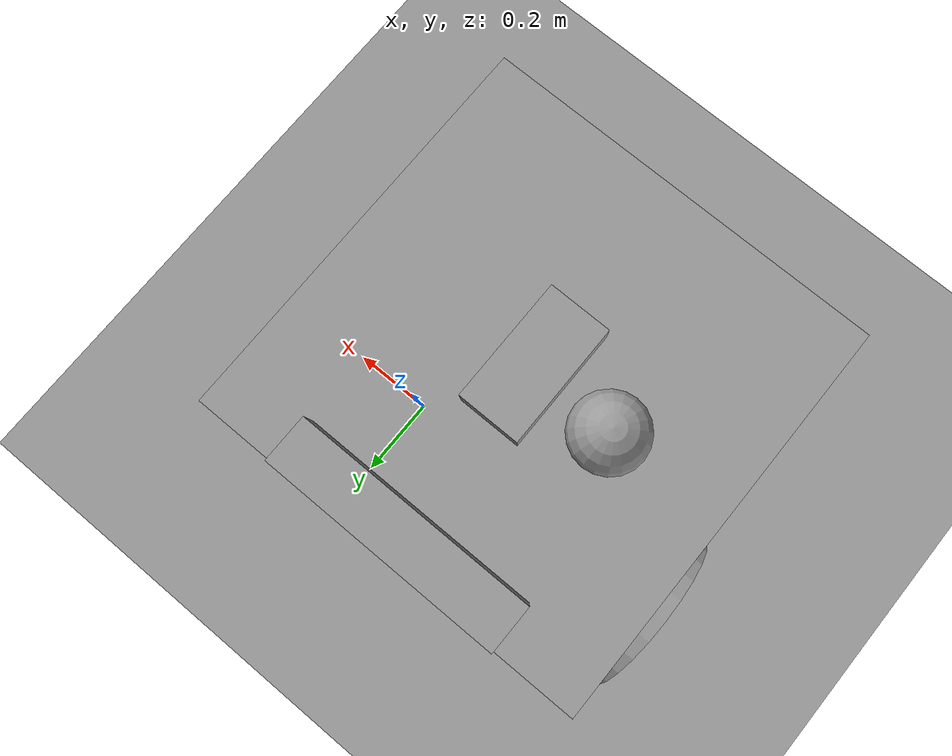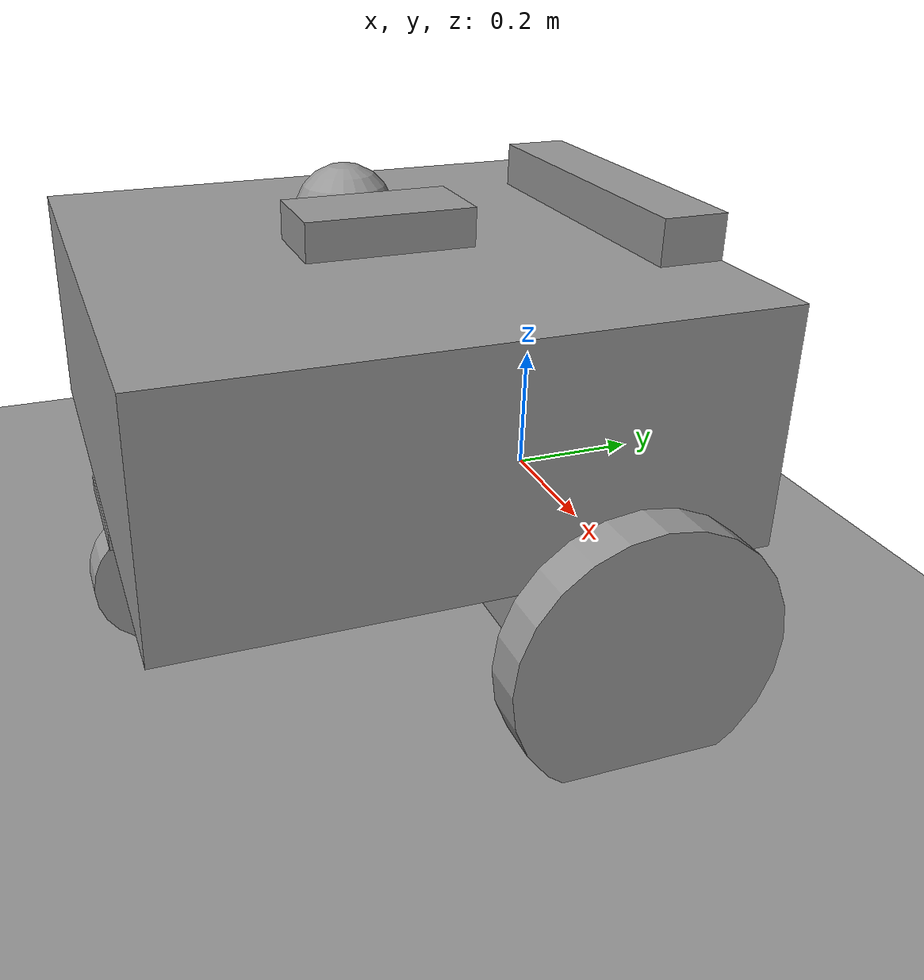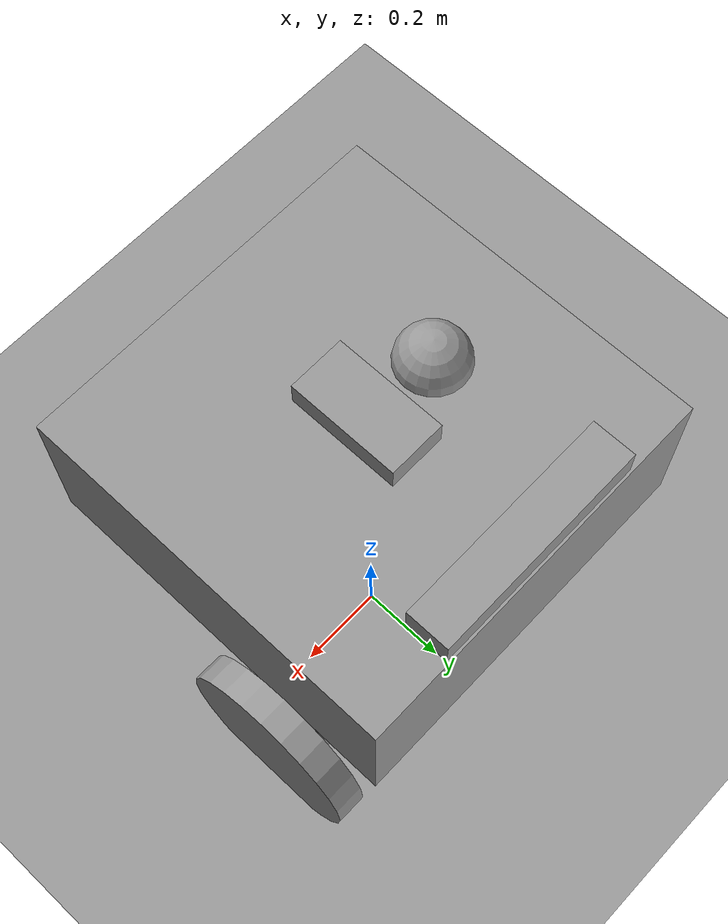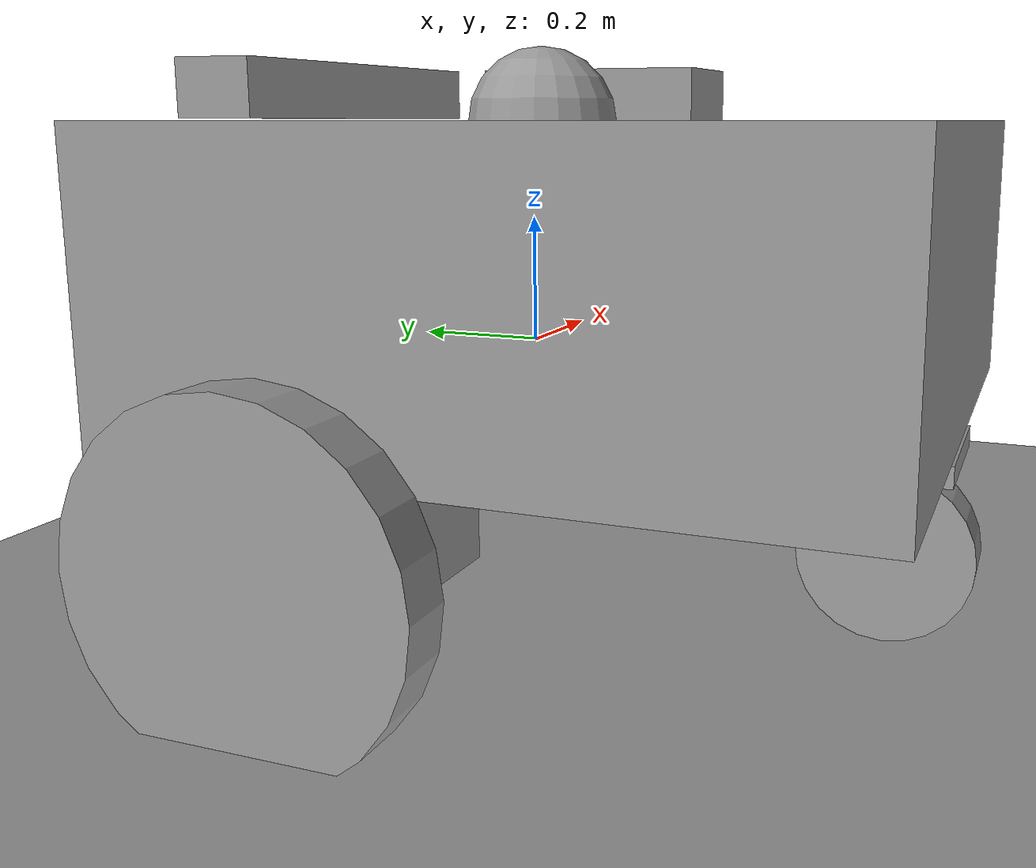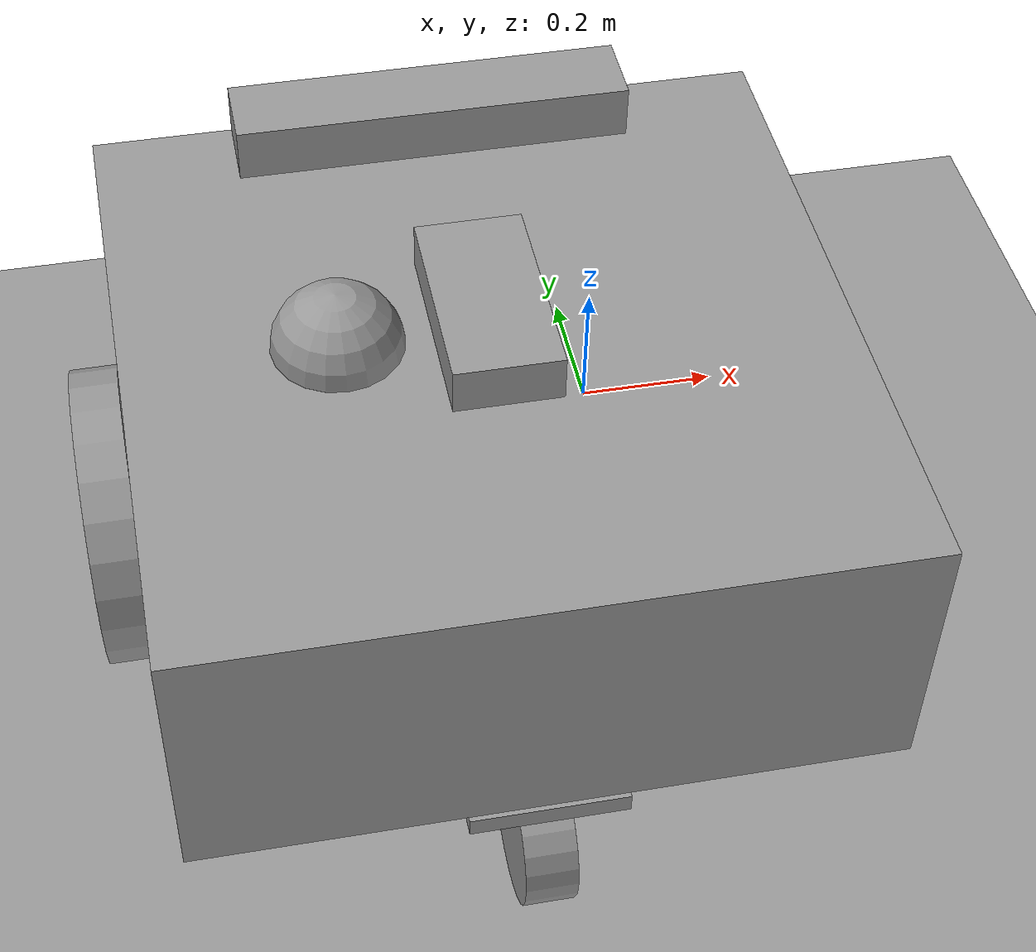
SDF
<?xml version='1.0'?>
<sdf version='1.6'>
  <model name='nano_ros'>
    <link name='link_10'>
      <inertial>
        <mass>0.0017644</mass>
        <inertia>
          <ixx>1.05002e-05</ixx>
          <ixy>0</ixy>
          <ixz>0</ixz>
          <iyy>7.50689e-06</iyy>
          <iyz>0</iyz>
          <izz>1.77484e-05</izz>
        </inertia>
        <pose frame=''>0 0 0 0 -0 0</pose>
      </inertial>
      <pose frame=''>-0.201195 -0.570392 -0.079013 0 -0 0</pose>
      <visual name='visual'>
        <pose frame=''>0 0 0 0 -0 0</pose>
        <geometry>
          <box>
            <size>0.224 0.265582 0.029659</size>
          </box>
        </geometry>
        <material>
          <lighting>1</lighting>
          <script>
            <uri>file://media/materials/scripts/gazebo.material</uri>
            <name>Gazebo/Grey</name>
          </script>
          <emissive>0 0 0 1</emissive>
        </material>
        <transparency>0</transparency>
        <cast_shadows>1</cast_shadows>
      </visual>
      <collision name='collision'>
        <laser_retro>0</laser_retro>
        <max_contacts>10</max_contacts>
        <pose frame=''>0 0 0 0 -0 0</pose>
        <geometry>
          <box>
            <size>0.224 0.265582 0.029659</size>
          </box>
        </geometry>
        <surface>
          <friction>
            <ode>
              <mu>1</mu>
              <mu2>1</mu2>
              <fdir1>0 0 0</fdir1>
              <slip1>0</slip1>
              <slip2>0</slip2>
            </ode>
            <torsional>
              <coefficient>1</coefficient>
              <patch_radius>0</patch_radius>
              <surface_radius>0</surface_radius>
              <use_patch_radius>1</use_patch_radius>
              <ode>
                <slip>0</slip>
              </ode>
            </torsional>
          </friction>
          <bounce>
            <restitution_coefficient>0</restitution_coefficient>
            <threshold>1e+06</threshold>
          </bounce>
          <contact>
            <collide_without_contact>0</collide_without_contact>
            <collide_without_contact_bitmask>1</collide_without_contact_bitmask>
            <collide_bitmask>1</collide_bitmask>
            <ode>
              <soft_cfm>0</soft_cfm>
              <soft_erp>0.2</soft_erp>
              <kp>1e+13</kp>
              <kd>1</kd>
              <max_vel>0.01</max_vel>
              <min_depth>0</min_depth>
            </ode>
            <bullet>
              <split_impulse>1</split_impulse>
              <split_impulse_penetration_threshold>-0.01</split_impulse_penetration_threshold>
              <soft_cfm>0</soft_cfm>
              <soft_erp>0.2</soft_erp>
              <kp>1e+13</kp>
              <kd>1</kd>
            </bullet>
          </contact>
        </surface>
      </collision>
    </link>
    <link name='link_3'>
      <inertial>
        <mass>0.410103</mass>
        <inertia>
          <ixx>0.039923</ixx>
          <ixy>0</ixy>
          <ixz>0</ixz>
          <iyy>0.039923</iyy>
          <iyz>0</iyz>
          <izz>0.0683504</izz>
        </inertia>
        <pose frame=''>0 0 0 0 -0 0</pose>
      </inertial>
      <pose frame=''>-0.196415 -0.201837 0.149643 0 -0 0</pose>
      <gravity>1</gravity>
      <self_collide>0</self_collide>
      <kinematic>0</kinematic>
      <enable_wind>0</enable_wind>
      <visual name='visual'>
        <pose frame=''>0 0 0 0 -0 0</pose>
        <geometry>
          <box>
            <size>1 1 0.410103</size>
          </box>
        </geometry>
        <material>
          <lighting>1</lighting>
          <script>
            <uri>file://media/materials/scripts/gazebo.material</uri>
            <name>Gazebo/Grey</name>
          </script>
          <shader type='vertex'>
            <normal_map>__default__</normal_map>
          </shader>
          <emissive>0 0 0 1</emissive>
          <ambient>0.3 0.3 0.3 1</ambient>
          <diffuse>0.7 0.7 0.7 1</diffuse>
          <specular>0.01 0.01 0.01 1</specular>
        </material>
        <transparency>0</transparency>
        <cast_shadows>1</cast_shadows>
      </visual>
      <collision name='collision'>
        <laser_retro>0</laser_retro>
        <max_contacts>10</max_contacts>
        <pose frame=''>0 0 0 0 -0 0</pose>
        <geometry>
          <box>
            <size>1 1 0.410103</size>
          </box>
        </geometry>
        <surface>
          <friction>
            <ode>
              <mu>1</mu>
              <mu2>1</mu2>
              <fdir1>0 0 0</fdir1>
              <slip1>0</slip1>
              <slip2>0</slip2>
            </ode>
            <torsional>
              <coefficient>1</coefficient>
              <patch_radius>0</patch_radius>
              <surface_radius>0</surface_radius>
              <use_patch_radius>1</use_patch_radius>
              <ode>
                <slip>0</slip>
              </ode>
            </torsional>
          </friction>
          <bounce>
            <restitution_coefficient>0</restitution_coefficient>
            <threshold>1e+06</threshold>
          </bounce>
          <contact>
            <collide_without_contact>0</collide_without_contact>
            <collide_without_contact_bitmask>1</collide_without_contact_bitmask>
            <collide_bitmask>1</collide_bitmask>
            <ode>
              <soft_cfm>0</soft_cfm>
              <soft_erp>0.2</soft_erp>
              <kp>1e+13</kp>
              <kd>1</kd>
              <max_vel>0.01</max_vel>
              <min_depth>0</min_depth>
            </ode>
            <bullet>
              <split_impulse>1</split_impulse>
              <split_impulse_penetration_threshold>-0.01</split_impulse_penetration_threshold>
              <soft_cfm>0</soft_cfm>
              <soft_erp>0.2</soft_erp>
              <kp>1e+13</kp>
              <kd>1</kd>
            </bullet>
          </contact>
        </surface>
      </collision>
    </link>
    <link name='link_5'>
      <inertial>
        <mass>0.00514706</mass>
        <inertia>
          <ixx>8.14895e-06</ixx>
          <ixy>0</ixy>
          <ixz>0</ixz>
          <iyy>0.000146199</iyy>
          <iyz>0</iyz>
          <izz>0.000149055</izz>
        </inertia>
        <pose frame=''>0 0 0 0 -0 0</pose>
      </inertial>
      <pose frame=''>-0.199829 0.235683 0.396842 0 -0 0</pose>
      <visual name='visual'>
        <pose frame=''>0 0 0 0 -0 0</pose>
        <geometry>
          <box>
            <size>0.578517 0.113262 0.078552</size>
          </box>
        </geometry>
        <material>
          <lighting>1</lighting>
          <script>
            <uri>file://media/materials/scripts/gazebo.material</uri>
            <name>Gazebo/Grey</name>
          </script>
          <emissive>0 0 0 1</emissive>
        </material>
        <transparency>0</transparency>
        <cast_shadows>1</cast_shadows>
      </visual>
      <collision name='collision'>
        <laser_retro>0</laser_retro>
        <max_contacts>10</max_contacts>
        <pose frame=''>0 0 0 0 -0 0</pose>
        <geometry>
          <box>
            <size>0.578517 0.113262 0.078552</size>
          </box>
        </geometry>
        <surface>
          <friction>
            <ode>
              <mu>1</mu>
              <mu2>1</mu2>
              <fdir1>0 0 0</fdir1>
              <slip1>0</slip1>
              <slip2>0</slip2>
            </ode>
            <torsional>
              <coefficient>1</coefficient>
              <patch_radius>0</patch_radius>
              <surface_radius>0</surface_radius>
              <use_patch_radius>1</use_patch_radius>
              <ode>
                <slip>0</slip>
              </ode>
            </torsional>
          </friction>
          <bounce>
            <restitution_coefficient>0</restitution_coefficient>
            <threshold>1e+06</threshold>
          </bounce>
          <contact>
            <collide_without_contact>0</collide_without_contact>
            <collide_without_contact_bitmask>1</collide_without_contact_bitmask>
            <collide_bitmask>1</collide_bitmask>
            <ode>
              <soft_cfm>0</soft_cfm>
              <soft_erp>0.2</soft_erp>
              <kp>1e+13</kp>
              <kd>1</kd>
              <max_vel>0.01</max_vel>
              <min_depth>0</min_depth>
            </ode>
            <bullet>
              <split_impulse>1</split_impulse>
              <split_impulse_penetration_threshold>-0.01</split_impulse_penetration_threshold>
              <soft_cfm>0</soft_cfm>
              <soft_erp>0.2</soft_erp>
              <kp>1e+13</kp>
              <kd>1</kd>
            </bullet>
          </contact>
        </surface>
      </collision>
    </link>
    <link name='link_6'>
      <inertial>
        <mass>0.00320996</mass>
        <inertia>
          <ixx>2.48031e-05</ixx>
          <ixy>0</ixy>
          <ixz>0</ixz>
          <iyy>7.50884e-06</iyy>
          <iyz>0</iyz>
          <izz>2.95679e-05</izz>
        </inertia>
        <pose frame=''>0 0 0 0 -0 0</pose>
      </inertial>
      <pose frame=''>-0.194265 -0.197127 0.386277 0 -0 0</pose>
      <visual name='visual'>
        <pose frame=''>0 0 0 0 -0 0</pose>
        <geometry>
          <box>
            <size>0.151465 0.295963 0.071617</size>
          </box>
        </geometry>
        <material>
          <lighting>1</lighting>
          <script>
            <uri>file://media/materials/scripts/gazebo.material</uri>
            <name>Gazebo/Grey</name>
          </script>
          <emissive>0 0 0 1</emissive>
        </material>
        <transparency>0</transparency>
        <cast_shadows>1</cast_shadows>
      </visual>
      <collision name='collision'>
        <laser_retro>0</laser_retro>
        <max_contacts>10</max_contacts>
        <pose frame=''>0 0 0 0 -0 0</pose>
        <geometry>
          <box>
            <size>0.151465 0.295963 0.071617</size>
          </box>
        </geometry>
        <surface>
          <friction>
            <ode>
              <mu>1</mu>
              <mu2>1</mu2>
              <fdir1>0 0 0</fdir1>
              <slip1>0</slip1>
              <slip2>0</slip2>
            </ode>
            <torsional>
              <coefficient>1</coefficient>
              <patch_radius>0</patch_radius>
              <surface_radius>0</surface_radius>
              <use_patch_radius>1</use_patch_radius>
              <ode>
                <slip>0</slip>
              </ode>
            </torsional>
          </friction>
          <bounce>
            <restitution_coefficient>0</restitution_coefficient>
            <threshold>1e+06</threshold>
          </bounce>
          <contact>
            <collide_without_contact>0</collide_without_contact>
            <collide_without_contact_bitmask>1</collide_without_contact_bitmask>
            <collide_bitmask>1</collide_bitmask>
            <ode>
              <soft_cfm>0</soft_cfm>
              <soft_erp>0.2</soft_erp>
              <kp>1e+13</kp>
              <kd>1</kd>
              <max_vel>0.01</max_vel>
              <min_depth>0</min_depth>
            </ode>
            <bullet>
              <split_impulse>1</split_impulse>
              <split_impulse_penetration_threshold>-0.01</split_impulse_penetration_threshold>
              <soft_cfm>0</soft_cfm>
              <soft_erp>0.2</soft_erp>
              <kp>1e+13</kp>
              <kd>1</kd>
            </bullet>
          </contact>
        </surface>
      </collision>
    </link>
    <link name='link_7'>
      <inertial>
        <mass>0.00640953</mass>
        <inertia>
          <ixx>2.21188e-05</ixx>
          <ixy>0</ixy>
          <ixz>0</ixz>
          <iyy>2.21188e-05</iyy>
          <iyz>0</iyz>
          <izz>2.21188e-05</izz>
        </inertia>
        <pose frame=''>0 0 0 0 -0 0</pose>
      </inertial>
      <pose frame=''>-0.399848 -0.191572 0.351926 0 -0 0</pose>
      <visual name='visual'>
        <pose frame=''>0 0 0 0 -0 0</pose>
        <geometry>
          <sphere>
            <radius>0.0928832</radius>
          </sphere>
        </geometry>
        <material>
          <lighting>1</lighting>
          <script>
            <uri>file://media/materials/scripts/gazebo.material</uri>
            <name>Gazebo/Grey</name>
          </script>
          <emissive>0 0 0 1</emissive>
        </material>
        <transparency>0</transparency>
        <cast_shadows>1</cast_shadows>
      </visual>
      <collision name='collision'>
        <laser_retro>0</laser_retro>
        <max_contacts>10</max_contacts>
        <pose frame=''>0 0 0 0 -0 0</pose>
        <geometry>
          <sphere>
            <radius>0.092883</radius>
          </sphere>
        </geometry>
        <surface>
          <friction>
            <ode>
              <mu>1</mu>
              <mu2>1</mu2>
              <fdir1>0 0 0</fdir1>
              <slip1>0</slip1>
              <slip2>0</slip2>
            </ode>
            <torsional>
              <coefficient>1</coefficient>
              <patch_radius>0</patch_radius>
              <surface_radius>0</surface_radius>
              <use_patch_radius>1</use_patch_radius>
              <ode>
                <slip>0</slip>
              </ode>
            </torsional>
          </friction>
          <bounce>
            <restitution_coefficient>0</restitution_coefficient>
            <threshold>1e+06</threshold>
          </bounce>
          <contact>
            <collide_without_contact>0</collide_without_contact>
            <collide_without_contact_bitmask>1</collide_without_contact_bitmask>
            <collide_bitmask>1</collide_bitmask>
            <ode>
              <soft_cfm>0</soft_cfm>
              <soft_erp>0.2</soft_erp>
              <kp>1e+13</kp>
              <kd>1</kd>
              <max_vel>0.01</max_vel>
              <min_depth>0</min_depth>
            </ode>
            <bullet>
              <split_impulse>1</split_impulse>
              <split_impulse_penetration_threshold>-0.01</split_impulse_penetration_threshold>
              <soft_cfm>0</soft_cfm>
              <soft_erp>0.2</soft_erp>
              <kp>1e+13</kp>
              <kd>1</kd>
            </bullet>
          </contact>
        </surface>
      </collision>
    </link>
    <link name='link_8'>
      <inertial>
        <mass>0.0130518</mass>
        <inertia>
          <ixx>8.29631e-05</ixx>
          <ixy>0</ixy>
          <ixz>0</ixz>
          <iyy>0.000166764</iyy>
          <iyz>0</iyz>
          <izz>0.000172195</izz>
        </inertia>
        <pose frame=''>0 0 0 0 -0 0</pose>
      </inertial>
      <pose frame=''>-0.5296 0.030838 -0.153865 0 -0 0</pose>
      <visual name='visual'>
        <pose frame=''>0 0 0 0 -0 0</pose>
        <geometry>
          <box>
            <size>0.343049 0.201582 0.188791</size>
          </box>
        </geometry>
        <material>
          <lighting>1</lighting>
          <script>
            <uri>file://media/materials/scripts/gazebo.material</uri>
            <name>Gazebo/Grey</name>
          </script>
          <emissive>0 0 0 1</emissive>
        </material>
        <transparency>0</transparency>
        <cast_shadows>1</cast_shadows>
      </visual>
      <collision name='collision'>
        <laser_retro>0</laser_retro>
        <max_contacts>10</max_contacts>
        <pose frame=''>0 0 0 0 -0 0</pose>
        <geometry>
          <box>
            <size>0.343049 0.201582 0.188791</size>
          </box>
        </geometry>
        <surface>
          <friction>
            <ode>
              <mu>1</mu>
              <mu2>1</mu2>
              <fdir1>0 0 0</fdir1>
              <slip1>0</slip1>
              <slip2>0</slip2>
            </ode>
            <torsional>
              <coefficient>1</coefficient>
              <patch_radius>0</patch_radius>
              <surface_radius>0</surface_radius>
              <use_patch_radius>1</use_patch_radius>
              <ode>
                <slip>0</slip>
              </ode>
            </torsional>
          </friction>
          <bounce>
            <restitution_coefficient>0</restitution_coefficient>
            <threshold>1e+06</threshold>
          </bounce>
          <contact>
            <collide_without_contact>0</collide_without_contact>
            <collide_without_contact_bitmask>1</collide_without_contact_bitmask>
            <collide_bitmask>1</collide_bitmask>
            <ode>
              <soft_cfm>0</soft_cfm>
              <soft_erp>0.2</soft_erp>
              <kp>1e+13</kp>
              <kd>1</kd>
              <max_vel>0.01</max_vel>
              <min_depth>0</min_depth>
            </ode>
            <bullet>
              <split_impulse>1</split_impulse>
              <split_impulse_penetration_threshold>-0.01</split_impulse_penetration_threshold>
              <soft_cfm>0</soft_cfm>
              <soft_erp>0.2</soft_erp>
              <kp>1e+13</kp>
              <kd>1</kd>
            </bullet>
          </contact>
        </surface>
      </collision>
    </link>
    <link name='link_8_clone'>
      <inertial>
        <mass>0.0130518</mass>
        <inertia>
          <ixx>8.29631e-05</ixx>
          <ixy>0</ixy>
          <ixz>0</ixz>
          <iyy>0.000166764</iyy>
          <iyz>0</iyz>
          <izz>0.000172195</izz>
        </inertia>
        <pose frame=''>0 0 0 0 -0 0</pose>
      </inertial>
      <pose frame=''>0.129957 0.019492 -0.153865 0 -0 0</pose>
      <visual name='visual'>
        <pose frame=''>0 0 0 0 -0 0</pose>
        <geometry>
          <box>
            <size>0.343049 0.201582 0.188791</size>
          </box>
        </geometry>
        <material>
          <lighting>1</lighting>
          <script>
            <uri>file://media/materials/scripts/gazebo.material</uri>
            <name>Gazebo/Grey</name>
          </script>
          <shader type='pixel'/>
          <emissive>0 0 0 1</emissive>
        </material>
        <transparency>0</transparency>
        <cast_shadows>1</cast_shadows>
      </visual>
      <collision name='collision'>
        <laser_retro>0</laser_retro>
        <max_contacts>10</max_contacts>
        <pose frame=''>0 0 0 0 -0 0</pose>
        <geometry>
          <box>
            <size>0.343049 0.201582 0.188791</size>
          </box>
        </geometry>
        <surface>
          <friction>
            <ode>
              <mu>1</mu>
              <mu2>1</mu2>
              <fdir1>0 0 0</fdir1>
              <slip1>0</slip1>
              <slip2>0</slip2>
            </ode>
            <torsional>
              <coefficient>1</coefficient>
              <patch_radius>0</patch_radius>
              <surface_radius>0</surface_radius>
              <use_patch_radius>1</use_patch_radius>
              <ode>
                <slip>0</slip>
              </ode>
            </torsional>
          </friction>
          <bounce>
            <restitution_coefficient>0</restitution_coefficient>
            <threshold>1e+06</threshold>
          </bounce>
          <contact>
            <collide_without_contact>0</collide_without_contact>
            <collide_without_contact_bitmask>1</collide_without_contact_bitmask>
            <collide_bitmask>1</collide_bitmask>
            <ode>
              <soft_cfm>0</soft_cfm>
              <soft_erp>0.2</soft_erp>
              <kp>1e+13</kp>
              <kd>1</kd>
              <max_vel>0.01</max_vel>
              <min_depth>0</min_depth>
            </ode>
            <bullet>
              <split_impulse>1</split_impulse>
              <split_impulse_penetration_threshold>-0.01</split_impulse_penetration_threshold>
              <soft_cfm>0</soft_cfm>
              <soft_erp>0.2</soft_erp>
              <kp>1e+13</kp>
              <kd>1</kd>
            </bullet>
          </contact>
        </surface>
      </collision>
    </link>
    <link name='link_9'>
      <inertial>
        <mass>0.0164227</mass>
        <inertia>
          <ixx>0.000232501</ixx>
          <ixy>0</ixy>
          <ixz>0</ixz>
          <iyy>0.000232501</iyy>
          <iyz>0</iyz>
          <izz>0.000449571</izz>
        </inertia>
        <pose frame=''>0 0 0 0 -0 0</pose>
      </inertial>
      <pose frame=''>0.360072 0.042935 -0.166376 3.14159 -1.56455 3.14159</pose>
      <visual name='visual'>
        <pose frame=''>0 0 0 0 -0 0</pose>
        <geometry>
          <cylinder>
            <radius>0.233987</radius>
            <length>0.075083</length>
          </cylinder>
        </geometry>
        <material>
          <lighting>1</lighting>
          <script>
            <uri>file://media/materials/scripts/gazebo.material</uri>
            <name>Gazebo/Grey</name>
          </script>
          <emissive>0 0 0 1</emissive>
        </material>
        <transparency>0</transparency>
        <cast_shadows>1</cast_shadows>
      </visual>
      <collision name='collision'>
        <laser_retro>0</laser_retro>
        <max_contacts>10</max_contacts>
        <pose frame=''>0 0 0 0 -0 0</pose>
        <geometry>
          <cylinder>
            <radius>0.233987</radius>
            <length>0.075083</length>
          </cylinder>
        </geometry>
        <surface>
          <friction>
            <ode>
              <mu>1</mu>
              <mu2>1</mu2>
              <fdir1>0 0 0</fdir1>
              <slip1>0</slip1>
              <slip2>0</slip2>
            </ode>
            <torsional>
              <coefficient>1</coefficient>
              <patch_radius>0</patch_radius>
              <surface_radius>0</surface_radius>
              <use_patch_radius>1</use_patch_radius>
              <ode>
                <slip>0</slip>
              </ode>
            </torsional>
          </friction>
          <bounce>
            <restitution_coefficient>0</restitution_coefficient>
            <threshold>1e+06</threshold>
          </bounce>
          <contact>
            <collide_without_contact>0</collide_without_contact>
            <collide_without_contact_bitmask>1</collide_without_contact_bitmask>
            <collide_bitmask>1</collide_bitmask>
            <ode>
              <soft_cfm>0</soft_cfm>
              <soft_erp>0.2</soft_erp>
              <kp>1e+13</kp>
              <kd>1</kd>
              <max_vel>0.01</max_vel>
              <min_depth>0</min_depth>
            </ode>
            <bullet>
              <split_impulse>1</split_impulse>
              <split_impulse_penetration_threshold>-0.01</split_impulse_penetration_threshold>
              <soft_cfm>0</soft_cfm>
              <soft_erp>0.2</soft_erp>
              <kp>1e+13</kp>
              <kd>1</kd>
            </bullet>
          </contact>
        </surface>
      </collision>
    </link>
    <link name='link_9_clone'>
      <inertial>
        <mass>0.0164227</mass>
        <inertia>
          <ixx>0.000232501</ixx>
          <ixy>0</ixy>
          <ixz>0</ixz>
          <iyy>0.000232501</iyy>
          <iyz>0</iyz>
          <izz>0.000449571</izz>
        </inertia>
        <pose frame=''>0 0 0 0 -0 0</pose>
      </inertial>
      <pose frame=''>-0.744785 0.030139 -0.163614 3.14159 -1.56455 3.14159</pose>
      <visual name='visual'>
        <pose frame=''>0 0 0 0 -0 0</pose>
        <geometry>
          <cylinder>
            <radius>0.233987</radius>
            <length>0.075083</length>
          </cylinder>
        </geometry>
        <material>
          <lighting>1</lighting>
          <script>
            <uri>file://media/materials/scripts/gazebo.material</uri>
            <name>Gazebo/Grey</name>
          </script>
          <shader type='pixel'/>
          <emissive>0 0 0 1</emissive>
        </material>
        <transparency>0</transparency>
        <cast_shadows>1</cast_shadows>
      </visual>
      <collision name='collision'>
        <laser_retro>0</laser_retro>
        <max_contacts>10</max_contacts>
        <pose frame=''>0 0 0 0 -0 0</pose>
        <geometry>
          <cylinder>
            <radius>0.233987</radius>
            <length>0.075083</length>
          </cylinder>
        </geometry>
        <surface>
          <friction>
            <ode>
              <mu>1</mu>
              <mu2>1</mu2>
              <fdir1>0 0 0</fdir1>
              <slip1>0</slip1>
              <slip2>0</slip2>
            </ode>
            <torsional>
              <coefficient>1</coefficient>
              <patch_radius>0</patch_radius>
              <surface_radius>0</surface_radius>
              <use_patch_radius>1</use_patch_radius>
              <ode>
                <slip>0</slip>
              </ode>
            </torsional>
          </friction>
          <bounce>
            <restitution_coefficient>0</restitution_coefficient>
            <threshold>1e+06</threshold>
          </bounce>
          <contact>
            <collide_without_contact>0</collide_without_contact>
            <collide_without_contact_bitmask>1</collide_without_contact_bitmask>
            <collide_bitmask>1</collide_bitmask>
            <ode>
              <soft_cfm>0</soft_cfm>
              <soft_erp>0.2</soft_erp>
              <kp>1e+13</kp>
              <kd>1</kd>
              <max_vel>0.01</max_vel>
              <min_depth>0</min_depth>
            </ode>
            <bullet>
              <split_impulse>1</split_impulse>
              <split_impulse_penetration_threshold>-0.01</split_impulse_penetration_threshold>
              <soft_cfm>0</soft_cfm>
              <soft_erp>0.2</soft_erp>
              <kp>1e+13</kp>
              <kd>1</kd>
            </bullet>
          </contact>
        </surface>
      </collision>
    </link>
    <link name='link_9_clone_0'>
      <inertial>
        <mass>0.00431441</mass>
        <inertia>
          <ixx>1.75392e-05</ixx>
          <ixy>0</ixy>
          <ixz>0</ixz>
          <iyy>1.75392e-05</iyy>
          <iyz>0</iyz>
          <izz>3.10246e-05</izz>
        </inertia>
        <pose frame=''>0 0 0 0 -0 0</pose>
      </inertial>
      <pose frame=''>-0.200654 -0.611966 -0.2176 3.14159 -1.56455 3.14159</pose>
      <visual name='visual'>
        <pose frame=''>0 0 0 0 -0 0</pose>
        <geometry>
          <cylinder>
            <radius>0.119924</radius>
            <length>0.075083</length>
          </cylinder>
        </geometry>
        <material>
          <lighting>1</lighting>
          <script>
            <uri>file://media/materials/scripts/gazebo.material</uri>
            <name>Gazebo/Grey</name>
          </script>
          <emissive>0 0 0 1</emissive>
          <shader type='pixel'/>
        </material>
        <transparency>0</transparency>
        <cast_shadows>1</cast_shadows>
      </visual>
      <collision name='collision'>
        <laser_retro>0</laser_retro>
        <max_contacts>10</max_contacts>
        <pose frame=''>0 0 0 0 -0 0</pose>
        <geometry>
          <cylinder>
            <radius>0.119924</radius>
            <length>0.075083</length>
          </cylinder>
        </geometry>
        <surface>
          <friction>
            <ode>
              <mu>1</mu>
              <mu2>1</mu2>
              <fdir1>0 0 0</fdir1>
              <slip1>0</slip1>
              <slip2>0</slip2>
            </ode>
            <torsional>
              <coefficient>1</coefficient>
              <patch_radius>0</patch_radius>
              <surface_radius>0</surface_radius>
              <use_patch_radius>1</use_patch_radius>
              <ode>
                <slip>0</slip>
              </ode>
            </torsional>
          </friction>
          <bounce>
            <restitution_coefficient>0</restitution_coefficient>
            <threshold>1e+06</threshold>
          </bounce>
          <contact>
            <collide_without_contact>0</collide_without_contact>
            <collide_without_contact_bitmask>1</collide_without_contact_bitmask>
            <collide_bitmask>1</collide_bitmask>
            <ode>
              <soft_cfm>0</soft_cfm>
              <soft_erp>0.2</soft_erp>
              <kp>1e+13</kp>
              <kd>1</kd>
              <max_vel>0.01</max_vel>
              <min_depth>0</min_depth>
            </ode>
            <bullet>
              <split_impulse>1</split_impulse>
              <split_impulse_penetration_threshold>-0.01</split_impulse_penetration_threshold>
              <soft_cfm>0</soft_cfm>
              <soft_erp>0.2</soft_erp>
              <kp>1e+13</kp>
              <kd>1</kd>
            </bullet>
          </contact>
        </surface>
      </collision>
    </link>
    <model name='ground_plane'>
      <static>1</static>
      <link name='link'>
        <collision name='collision'>
          <geometry>
            <plane>
              <normal>0 0 1</normal>
              <size>100 100</size>
            </plane>
          </geometry>
          <surface>
            <contact>
              <collide_bitmask>65535</collide_bitmask>
            </contact>
            <friction>
              <ode>
                <mu>100</mu>
                <mu2>50</mu2>
              </ode>
            </friction>
          </surface>
        </collision>
        <visual name='visual'>
          <cast_shadows>0</cast_shadows>
          <geometry>
            <plane>
              <normal>0 0 1</normal>
              <size>100 100</size>
            </plane>
          </geometry>
          <material>
            <script>
              <uri>file://media/materials/scripts/gazebo.material</uri>
              <name>Gazebo/Grey</name>
            </script>
          </material>
        </visual>
      </link>
      <pose frame=''>2.17656 1.41381 -0.350357 0 -0 0</pose>
    </model>
    <joint name='link_10_JOINT_8' type='revolute'>
      <parent>link_10</parent>
      <child>link_9_clone_0</child>
      <pose frame=''>0 0 0 0 -0 0</pose>
      <axis>
        <xyz>1 0 0</xyz>
        <use_parent_model_frame>0</use_parent_model_frame>
        <limit>
          <lower>-1.79769e+308</lower>
          <upper>1.79769e+308</upper>
          <effort>-1</effort>
          <velocity>-1</velocity>
        </limit>
        <dynamics>
          <spring_reference>0</spring_reference>
          <spring_stiffness>0</spring_stiffness>
          <damping>0</damping>
        </dynamics>
      </axis>
      <physics>
        <ode>
          <limit>
            <cfm>0</cfm>
            <erp>0.2</erp>
          </limit>
          <suspension>
            <cfm>0</cfm>
            <erp>0.2</erp>
          </suspension>
        </ode>
      </physics>
    </joint>
    <joint name='Base_to_Camera' type='fixed'>
      <parent>link_3</parent>
      <child>link_5</child>
      <pose frame=''>0 0 0 0 -0 0</pose>
      <physics>
        <ode>
          <limit>
            <cfm>0</cfm>
            <erp>0.2</erp>
          </limit>
          <suspension>
            <cfm>0</cfm>
            <erp>0.2</erp>
          </suspension>
        </ode>
      </physics>
    </joint>
    <joint name='base_to_px4' type='fixed'>
      <parent>link_3</parent>
      <child>link_6</child>
      <pose frame=''>0 0 0 0 -0 0</pose>
      <physics>
        <ode>
          <limit>
            <cfm>0</cfm>
            <erp>0.2</erp>
          </limit>
          <suspension>
            <cfm>0</cfm>
            <erp>0.2</erp>
          </suspension>
        </ode>
      </physics>
    </joint>
    <joint name='link_3_JOINT_3' type='fixed'>
      <parent>link_3</parent>
      <child>link_8_clone</child>
      <pose frame=''>0 0 0 0 -0 0</pose>
      <physics>
        <ode>
          <limit>
            <cfm>0</cfm>
            <erp>0.2</erp>
          </limit>
          <suspension>
            <cfm>0</cfm>
            <erp>0.2</erp>
          </suspension>
        </ode>
      </physics>
    </joint>
    <joint name='link_3_JOINT_4' type='revolute'>
      <parent>link_3</parent>
      <child>link_8</child>
      <pose frame=''>0 0 0 0 -0 0</pose>
      <axis>
        <xyz>1 0 0</xyz>
        <use_parent_model_frame>0</use_parent_model_frame>
        <limit>
          <lower>-1.79769e+308</lower>
          <upper>1.79769e+308</upper>
          <effort>-1</effort>
          <velocity>-1</velocity>
        </limit>
        <dynamics>
          <spring_reference>0</spring_reference>
          <spring_stiffness>0</spring_stiffness>
          <damping>0</damping>
        </dynamics>
      </axis>
      <physics>
        <ode>
          <limit>
            <cfm>0</cfm>
            <erp>0.2</erp>
          </limit>
          <suspension>
            <cfm>0</cfm>
            <erp>0.2</erp>
          </suspension>
        </ode>
      </physics>
    </joint>
    <joint name='link_3_JOINT_7' type='revolute'>
      <parent>link_3</parent>
      <child>link_10</child>
      <pose frame=''>0 0 0 0 -0 0</pose>
      <axis>
        <xyz>1 0 0</xyz>
        <use_parent_model_frame>0</use_parent_model_frame>
        <limit>
          <lower>-1.79769e+308</lower>
          <upper>1.79769e+308</upper>
          <effort>-1</effort>
          <velocity>-1</velocity>
        </limit>
        <dynamics>
          <spring_reference>0</spring_reference>
          <spring_stiffness>0</spring_stiffness>
          <damping>0</damping>
        </dynamics>
      </axis>
      <physics>
        <ode>
          <limit>
            <cfm>0</cfm>
            <erp>0.2</erp>
          </limit>
          <suspension>
            <cfm>0</cfm>
            <erp>0.2</erp>
          </suspension>
        </ode>
      </physics>
    </joint>
    <joint name='px4_to_gps' type='revolute'>
      <parent>link_6</parent>
      <child>link_7</child>
      <pose frame=''>0 0 0 0 -0 0</pose>
      <axis>
        <xyz>1 0 0</xyz>
        <use_parent_model_frame>0</use_parent_model_frame>
        <limit>
          <lower>-1.79769e+308</lower>
          <upper>1.79769e+308</upper>
          <effort>-1</effort>
          <velocity>-1</velocity>
        </limit>
        <dynamics>
          <spring_reference>0</spring_reference>
          <spring_stiffness>0</spring_stiffness>
          <damping>0</damping>
          <friction>0</friction>
        </dynamics>
      </axis>
      <physics>
        <ode>
          <limit>
            <cfm>0</cfm>
            <erp>0.2</erp>
          </limit>
          <suspension>
            <cfm>0</cfm>
            <erp>0.2</erp>
          </suspension>
        </ode>
      </physics>
    </joint>
    <joint name='link_8_JOINT_5' type='revolute'>
      <parent>link_8</parent>
      <child>link_9_clone</child>
      <pose frame=''>0 0 0 0 -0 0</pose>
      <axis>
        <xyz>1 0 0</xyz>
        <use_parent_model_frame>0</use_parent_model_frame>
        <limit>
          <lower>-1.79769e+308</lower>
          <upper>1.79769e+308</upper>
          <effort>-1</effort>
          <velocity>-1</velocity>
        </limit>
        <dynamics>
          <spring_reference>0</spring_reference>
          <spring_stiffness>0</spring_stiffness>
          <damping>0</damping>
        </dynamics>
      </axis>
      <physics>
        <ode>
          <limit>
            <cfm>0</cfm>
            <erp>0.2</erp>
          </limit>
          <suspension>
            <cfm>0</cfm>
            <erp>0.2</erp>
          </suspension>
        </ode>
      </physics>
    </joint>
    <joint name='link_8_clone_JOINT_6' type='revolute'>
      <parent>link_8_clone</parent>
      <child>link_9</child>
      <pose frame=''>0 0 0 0 -0 0</pose>
      <axis>
        <xyz>1 0 0</xyz>
        <use_parent_model_frame>0</use_parent_model_frame>
        <limit>
          <lower>-1.79769e+308</lower>
          <upper>1.79769e+308</upper>
          <effort>-1</effort>
          <velocity>-1</velocity>
        </limit>
        <dynamics>
          <spring_reference>0</spring_reference>
          <spring_stiffness>0</spring_stiffness>
          <damping>0</damping>
        </dynamics>
      </axis>
      <physics>
        <ode>
          <limit>
            <cfm>0</cfm>
            <erp>0.2</erp>
          </limit>
          <suspension>
            <cfm>0</cfm>
            <erp>0.2</erp>
          </suspension>
        </ode>
      </physics>
    </joint>
    <static>0</static>
    <allow_auto_disable>1</allow_auto_disable>
  </model>
</sdf>
